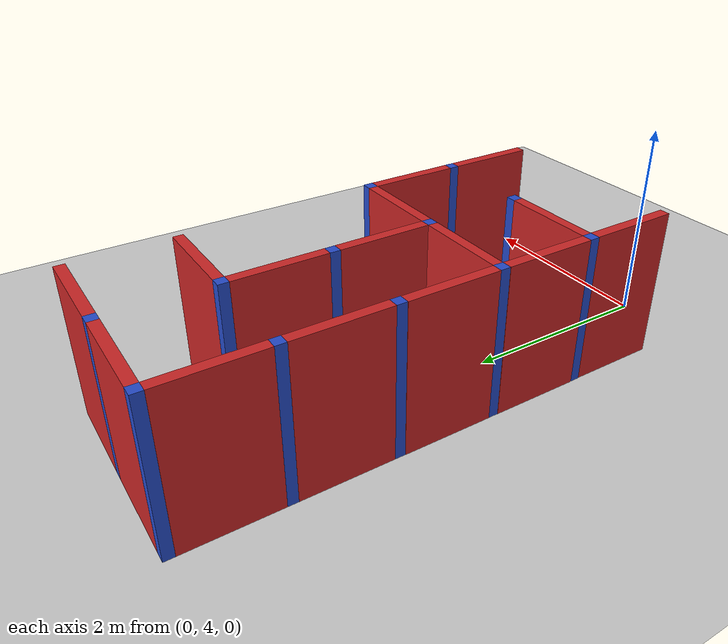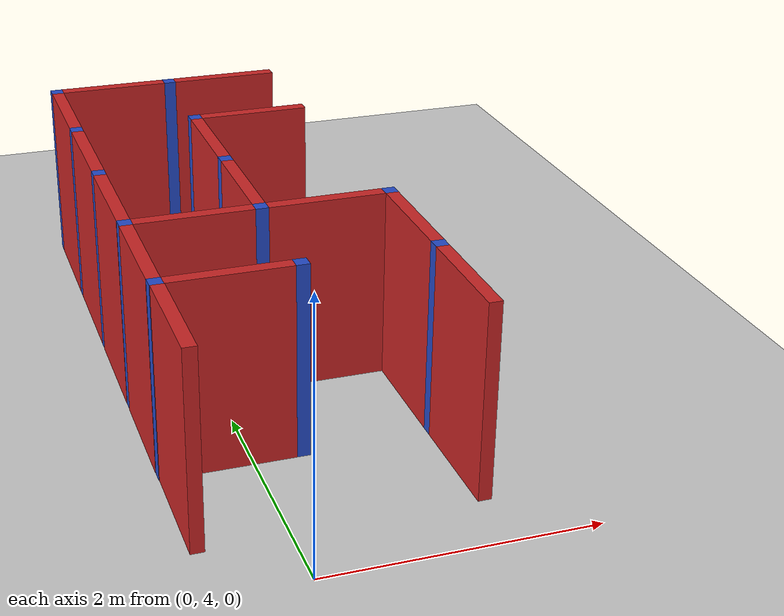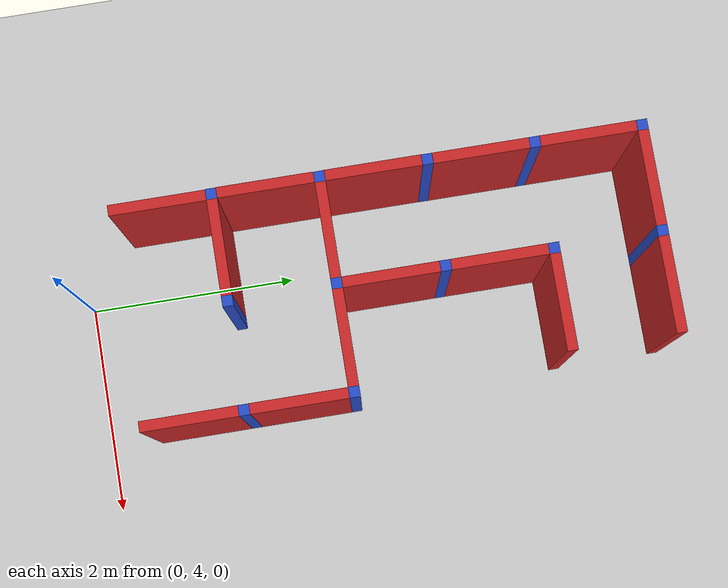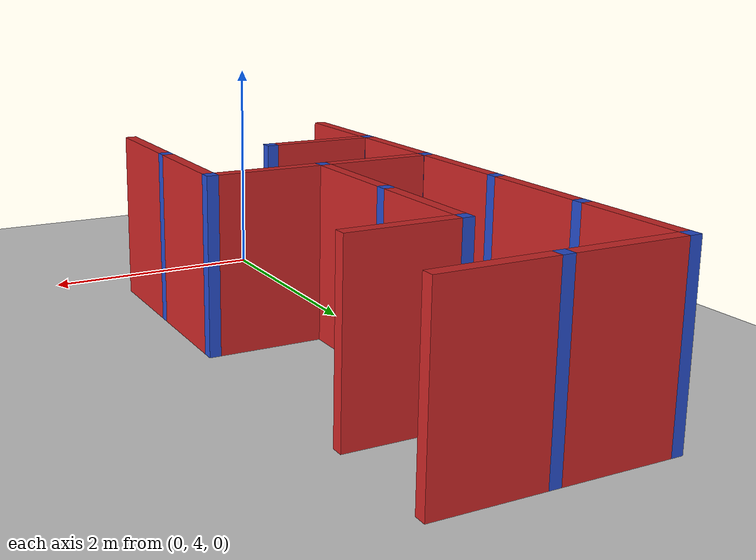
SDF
<sdf version="1.7">
 <world name="default">
  <model name="ground_plane">
   <static>1</static>
   <link name="link">
    <collision name="collision">
     <geometry><plane><normal>0 0 1</normal><size>100 100</size></plane></geometry>
     <surface><friction><ode><mu>100</mu><mu2>50</mu2></ode></friction></surface>
    </collision>
    <visual name="visual">
     <cast_shadows>0</cast_shadows>
     <geometry><plane><normal>0 0 1</normal><size>100 100</size></plane></geometry>
     <material>
      <script><uri>file://media/materials/scripts/gazebo.material</uri><name>Gazebo/Grey</name></script>
     </material>
    </visual>
   </link>
  </model>
  <model name="deneme">
   <link name="Joint_5_-10">
    <pose>5 -10 0 0 -0 0</pose>
    <visual name="Wall_2_Visual">
     <pose>0 0 0.75 0 -0 0</pose>
     <geometry><box><size>0.1 0.1 1.5</size></box></geometry>
     <material>
      <script><uri>file://media/materials/scripts/gazebo.material</uri><name>Gazebo/Blue</name></script>
      <ambient>0.996078 0.47451 0.0196078 1</ambient>
      <shader type="pixel"/>
     </material>
     <meta><layer>0</layer></meta>
    </visual>
    <collision name="Wall_2_Collision">
     <pose>0 0 0.75 0 -0 0</pose>
     <geometry><box><size>0.1 0.1 1.5</size></box></geometry>
     <surface>
      <friction>
       <ode><mu>1</mu><mu2>1</mu2><fdir1>0 0 0</fdir1><slip1>0</slip1><slip2>0</slip2></ode>
       <torsional>
        <coefficient>1</coefficient>
        <patch_radius>0</patch_radius>
        <surface_radius>0</surface_radius>
        <use_patch_radius>1</use_patch_radius>
        <ode><slip>0</slip></ode>
       </torsional>
      </friction>
      <bounce><restitution_coefficient>0</restitution_coefficient><threshold>1e+06</threshold></bounce>
      <contact>
       <collide_without_contact>0</collide_without_contact>
       <collide_without_contact_bitmask>1</collide_without_contact_bitmask>
       <collide_bitmask>1</collide_bitmask>
       <ode>
        <soft_cfm>0</soft_cfm>
        <soft_erp>0.2</soft_erp>
        <kp>1e+13</kp>
        <kd>1</kd>
        <max_vel>0.01</max_vel>
        <min_depth>0</min_depth>
       </ode>
       <bullet>
        <split_impulse>1</split_impulse>
        <split_impulse_penetration_threshold>-0.01</split_impulse_penetration_threshold>
        <soft_cfm>0</soft_cfm>
        <soft_erp>0.2</soft_erp>
        <kp>1e+13</kp>
        <kd>1</kd>
       </bullet>
      </contact>
     </surface>
    </collision>
   </link>
   <link name="Joint_5_-6">
    <pose>5 -6 0 0 -0 0</pose>
    <visual name="Wall_2_Visual">
     <pose>0 0 0.75 0 -0 0</pose>
     <geometry><box><size>0.1 0.1 1.5</size></box></geometry>
     <material>
      <script><uri>file://media/materials/scripts/gazebo.material</uri><name>Gazebo/Blue</name></script>
      <ambient>0.996078 0.47451 0.0196078 1</ambient>
      <shader type="pixel"/>
     </material>
     <meta><layer>0</layer></meta>
    </visual>
    <collision name="Wall_2_Collision">
     <pose>0 0 0.75 0 -0 0</pose>
     <geometry><box><size>0.1 0.1 1.5</size></box></geometry>
     <surface>
      <friction>
       <ode><mu>1</mu><mu2>1</mu2><fdir1>0 0 0</fdir1><slip1>0</slip1><slip2>0</slip2></ode>
       <torsional>
        <coefficient>1</coefficient>
        <patch_radius>0</patch_radius>
        <surface_radius>0</surface_radius>
        <use_patch_radius>1</use_patch_radius>
        <ode><slip>0</slip></ode>
       </torsional>
      </friction>
      <bounce><restitution_coefficient>0</restitution_coefficient><threshold>1e+06</threshold></bounce>
      <contact>
       <collide_without_contact>0</collide_without_contact>
       <collide_without_contact_bitmask>1</collide_without_contact_bitmask>
       <collide_bitmask>1</collide_bitmask>
       <ode>
        <soft_cfm>0</soft_cfm>
        <soft_erp>0.2</soft_erp>
        <kp>1e+13</kp>
        <kd>1</kd>
        <max_vel>0.01</max_vel>
        <min_depth>0</min_depth>
       </ode>
       <bullet>
        <split_impulse>1</split_impulse>
        <split_impulse_penetration_threshold>-0.01</split_impulse_penetration_threshold>
        <soft_cfm>0</soft_cfm>
        <soft_erp>0.2</soft_erp>
        <kp>1e+13</kp>
        <kd>1</kd>
       </bullet>
      </contact>
     </surface>
    </collision>
   </link>
   <link name="Joint_5_-7">
    <pose>5 -7 0 0 -0 0</pose>
    <visual name="Wall_2_Visual">
     <pose>0 0 0.75 0 -0 0</pose>
     <geometry><box><size>0.1 0.1 1.5</size></box></geometry>
     <material>
      <script><uri>file://media/materials/scripts/gazebo.material</uri><name>Gazebo/Blue</name></script>
      <ambient>0.996078 0.47451 0.0196078 1</ambient>
      <shader type="pixel"/>
     </material>
     <meta><layer>0</layer></meta>
    </visual>
    <collision name="Wall_2_Collision">
     <pose>0 0 0.75 0 -0 0</pose>
     <geometry><box><size>0.1 0.1 1.5</size></box></geometry>
     <surface>
      <friction>
       <ode><mu>1</mu><mu2>1</mu2><fdir1>0 0 0</fdir1><slip1>0</slip1><slip2>0</slip2></ode>
       <torsional>
        <coefficient>1</coefficient>
        <patch_radius>0</patch_radius>
        <surface_radius>0</surface_radius>
        <use_patch_radius>1</use_patch_radius>
        <ode><slip>0</slip></ode>
       </torsional>
      </friction>
      <bounce><restitution_coefficient>0</restitution_coefficient><threshold>1e+06</threshold></bounce>
      <contact>
       <collide_without_contact>0</collide_without_contact>
       <collide_without_contact_bitmask>1</collide_without_contact_bitmask>
       <collide_bitmask>1</collide_bitmask>
       <ode>
        <soft_cfm>0</soft_cfm>
        <soft_erp>0.2</soft_erp>
        <kp>1e+13</kp>
        <kd>1</kd>
        <max_vel>0.01</max_vel>
        <min_depth>0</min_depth>
       </ode>
       <bullet>
        <split_impulse>1</split_impulse>
        <split_impulse_penetration_threshold>-0.01</split_impulse_penetration_threshold>
        <soft_cfm>0</soft_cfm>
        <soft_erp>0.2</soft_erp>
        <kp>1e+13</kp>
        <kd>1</kd>
       </bullet>
      </contact>
     </surface>
    </collision>
   </link>
   <link name="Joint_5_-8">
    <pose>5 -8 0 0 -0 0</pose>
    <visual name="Wall_2_Visual">
     <pose>0 0 0.75 0 -0 0</pose>
     <geometry><box><size>0.1 0.1 1.5</size></box></geometry>
     <material>
      <script><uri>file://media/materials/scripts/gazebo.material</uri><name>Gazebo/Blue</name></script>
      <ambient>0.996078 0.47451 0.0196078 1</ambient>
      <shader type="pixel"/>
     </material>
     <meta><layer>0</layer></meta>
    </visual>
    <collision name="Wall_2_Collision">
     <pose>0 0 0.75 0 -0 0</pose>
     <geometry><box><size>0.1 0.1 1.5</size></box></geometry>
     <surface>
      <friction>
       <ode><mu>1</mu><mu2>1</mu2><fdir1>0 0 0</fdir1><slip1>0</slip1><slip2>0</slip2></ode>
       <torsional>
        <coefficient>1</coefficient>
        <patch_radius>0</patch_radius>
        <surface_radius>0</surface_radius>
        <use_patch_radius>1</use_patch_radius>
        <ode><slip>0</slip></ode>
       </torsional>
      </friction>
      <bounce><restitution_coefficient>0</restitution_coefficient><threshold>1e+06</threshold></bounce>
      <contact>
       <collide_without_contact>0</collide_without_contact>
       <collide_without_contact_bitmask>1</collide_without_contact_bitmask>
       <collide_bitmask>1</collide_bitmask>
       <ode>
        <soft_cfm>0</soft_cfm>
        <soft_erp>0.2</soft_erp>
        <kp>1e+13</kp>
        <kd>1</kd>
        <max_vel>0.01</max_vel>
        <min_depth>0</min_depth>
       </ode>
       <bullet>
        <split_impulse>1</split_impulse>
        <split_impulse_penetration_threshold>-0.01</split_impulse_penetration_threshold>
        <soft_cfm>0</soft_cfm>
        <soft_erp>0.2</soft_erp>
        <kp>1e+13</kp>
        <kd>1</kd>
       </bullet>
      </contact>
     </surface>
    </collision>
   </link>
   <link name="Joint_5_-9">
    <pose>5 -9 0 0 -0 0</pose>
    <visual name="Wall_2_Visual">
     <pose>0 0 0.75 0 -0 0</pose>
     <geometry><box><size>0.1 0.1 1.5</size></box></geometry>
     <material>
      <script><uri>file://media/materials/scripts/gazebo.material</uri><name>Gazebo/Blue</name></script>
      <ambient>0.996078 0.47451 0.0196078 1</ambient>
      <shader type="pixel"/>
     </material>
     <meta><layer>0</layer></meta>
    </visual>
    <collision name="Wall_2_Collision">
     <pose>0 0 0.75 0 -0 0</pose>
     <geometry><box><size>0.1 0.1 1.5</size></box></geometry>
     <surface>
      <friction>
       <ode><mu>1</mu><mu2>1</mu2><fdir1>0 0 0</fdir1><slip1>0</slip1><slip2>0</slip2></ode>
       <torsional>
        <coefficient>1</coefficient>
        <patch_radius>0</patch_radius>
        <surface_radius>0</surface_radius>
        <use_patch_radius>1</use_patch_radius>
        <ode><slip>0</slip></ode>
       </torsional>
      </friction>
      <bounce><restitution_coefficient>0</restitution_coefficient><threshold>1e+06</threshold></bounce>
      <contact>
       <collide_without_contact>0</collide_without_contact>
       <collide_without_contact_bitmask>1</collide_without_contact_bitmask>
       <collide_bitmask>1</collide_bitmask>
       <ode>
        <soft_cfm>0</soft_cfm>
        <soft_erp>0.2</soft_erp>
        <kp>1e+13</kp>
        <kd>1</kd>
        <max_vel>0.01</max_vel>
        <min_depth>0</min_depth>
       </ode>
       <bullet>
        <split_impulse>1</split_impulse>
        <split_impulse_penetration_threshold>-0.01</split_impulse_penetration_threshold>
        <soft_cfm>0</soft_cfm>
        <soft_erp>0.2</soft_erp>
        <kp>1e+13</kp>
        <kd>1</kd>
       </bullet>
      </contact>
     </surface>
    </collision>
   </link>
   <link name="Joint_6_-10">
    <pose>6 -10 0 0 -0 0</pose>
    <visual name="Wall_2_Visual">
     <pose>0 0 0.75 0 -0 0</pose>
     <geometry><box><size>0.1 0.1 1.5</size></box></geometry>
     <material>
      <script><uri>file://media/materials/scripts/gazebo.material</uri><name>Gazebo/Blue</name></script>
      <ambient>0.996078 0.47451 0.0196078 1</ambient>
      <shader type="pixel"/>
     </material>
     <meta><layer>0</layer></meta>
    </visual>
    <collision name="Wall_2_Collision">
     <pose>0 0 0.75 0 -0 0</pose>
     <geometry><box><size>0.1 0.1 1.5</size></box></geometry>
     <surface>
      <friction>
       <ode><mu>1</mu><mu2>1</mu2><fdir1>0 0 0</fdir1><slip1>0</slip1><slip2>0</slip2></ode>
       <torsional>
        <coefficient>1</coefficient>
        <patch_radius>0</patch_radius>
        <surface_radius>0</surface_radius>
        <use_patch_radius>1</use_patch_radius>
        <ode><slip>0</slip></ode>
       </torsional>
      </friction>
      <bounce><restitution_coefficient>0</restitution_coefficient><threshold>1e+06</threshold></bounce>
      <contact>
       <collide_without_contact>0</collide_without_contact>
       <collide_without_contact_bitmask>1</collide_without_contact_bitmask>
       <collide_bitmask>1</collide_bitmask>
       <ode>
        <soft_cfm>0</soft_cfm>
        <soft_erp>0.2</soft_erp>
        <kp>1e+13</kp>
        <kd>1</kd>
        <max_vel>0.01</max_vel>
        <min_depth>0</min_depth>
       </ode>
       <bullet>
        <split_impulse>1</split_impulse>
        <split_impulse_penetration_threshold>-0.01</split_impulse_penetration_threshold>
        <soft_cfm>0</soft_cfm>
        <soft_erp>0.2</soft_erp>
        <kp>1e+13</kp>
        <kd>1</kd>
       </bullet>
      </contact>
     </surface>
    </collision>
   </link>
   <link name="Joint_6_-6">
    <pose>6 -6 0 0 -0 0</pose>
    <visual name="Wall_2_Visual">
     <pose>0 0 0.75 0 -0 0</pose>
     <geometry><box><size>0.1 0.1 1.5</size></box></geometry>
     <material>
      <script><uri>file://media/materials/scripts/gazebo.material</uri><name>Gazebo/Blue</name></script>
      <ambient>0.996078 0.47451 0.0196078 1</ambient>
      <shader type="pixel"/>
     </material>
     <meta><layer>0</layer></meta>
    </visual>
    <collision name="Wall_2_Collision">
     <pose>0 0 0.75 0 -0 0</pose>
     <geometry><box><size>0.1 0.1 1.5</size></box></geometry>
     <surface>
      <friction>
       <ode><mu>1</mu><mu2>1</mu2><fdir1>0 0 0</fdir1><slip1>0</slip1><slip2>0</slip2></ode>
       <torsional>
        <coefficient>1</coefficient>
        <patch_radius>0</patch_radius>
        <surface_radius>0</surface_radius>
        <use_patch_radius>1</use_patch_radius>
        <ode><slip>0</slip></ode>
       </torsional>
      </friction>
      <bounce><restitution_coefficient>0</restitution_coefficient><threshold>1e+06</threshold></bounce>
      <contact>
       <collide_without_contact>0</collide_without_contact>
       <collide_without_contact_bitmask>1</collide_without_contact_bitmask>
       <collide_bitmask>1</collide_bitmask>
       <ode>
        <soft_cfm>0</soft_cfm>
        <soft_erp>0.2</soft_erp>
        <kp>1e+13</kp>
        <kd>1</kd>
        <max_vel>0.01</max_vel>
        <min_depth>0</min_depth>
       </ode>
       <bullet>
        <split_impulse>1</split_impulse>
        <split_impulse_penetration_threshold>-0.01</split_impulse_penetration_threshold>
        <soft_cfm>0</soft_cfm>
        <soft_erp>0.2</soft_erp>
        <kp>1e+13</kp>
        <kd>1</kd>
       </bullet>
      </contact>
     </surface>
    </collision>
   </link>
   <link name="Joint_6_-7">
    <pose>6 -7 0 0 -0 0</pose>
    <visual name="Wall_2_Visual">
     <pose>0 0 0.75 0 -0 0</pose>
     <geometry><box><size>0.1 0.1 1.5</size></box></geometry>
     <material>
      <script><uri>file://media/materials/scripts/gazebo.material</uri><name>Gazebo/Blue</name></script>
      <ambient>0.996078 0.47451 0.0196078 1</ambient>
      <shader type="pixel"/>
     </material>
     <meta><layer>0</layer></meta>
    </visual>
    <collision name="Wall_2_Collision">
     <pose>0 0 0.75 0 -0 0</pose>
     <geometry><box><size>0.1 0.1 1.5</size></box></geometry>
     <surface>
      <friction>
       <ode><mu>1</mu><mu2>1</mu2><fdir1>0 0 0</fdir1><slip1>0</slip1><slip2>0</slip2></ode>
       <torsional>
        <coefficient>1</coefficient>
        <patch_radius>0</patch_radius>
        <surface_radius>0</surface_radius>
        <use_patch_radius>1</use_patch_radius>
        <ode><slip>0</slip></ode>
       </torsional>
      </friction>
      <bounce><restitution_coefficient>0</restitution_coefficient><threshold>1e+06</threshold></bounce>
      <contact>
       <collide_without_contact>0</collide_without_contact>
       <collide_without_contact_bitmask>1</collide_without_contact_bitmask>
       <collide_bitmask>1</collide_bitmask>
       <ode>
        <soft_cfm>0</soft_cfm>
        <soft_erp>0.2</soft_erp>
        <kp>1e+13</kp>
        <kd>1</kd>
        <max_vel>0.01</max_vel>
        <min_depth>0</min_depth>
       </ode>
       <bullet>
        <split_impulse>1</split_impulse>
        <split_impulse_penetration_threshold>-0.01</split_impulse_penetration_threshold>
        <soft_cfm>0</soft_cfm>
        <soft_erp>0.2</soft_erp>
        <kp>1e+13</kp>
        <kd>1</kd>
       </bullet>
      </contact>
     </surface>
    </collision>
   </link>
   <link name="Joint_6_-8">
    <pose>6 -8 0 0 -0 0</pose>
    <visual name="Wall_2_Visual">
     <pose>0 0 0.75 0 -0 0</pose>
     <geometry><box><size>0.1 0.1 1.5</size></box></geometry>
     <material>
      <script><uri>file://media/materials/scripts/gazebo.material</uri><name>Gazebo/Blue</name></script>
      <ambient>0.996078 0.47451 0.0196078 1</ambient>
      <shader type="pixel"/>
     </material>
     <meta><layer>0</layer></meta>
    </visual>
    <collision name="Wall_2_Collision">
     <pose>0 0 0.75 0 -0 0</pose>
     <geometry><box><size>0.1 0.1 1.5</size></box></geometry>
     <surface>
      <friction>
       <ode><mu>1</mu><mu2>1</mu2><fdir1>0 0 0</fdir1><slip1>0</slip1><slip2>0</slip2></ode>
       <torsional>
        <coefficient>1</coefficient>
        <patch_radius>0</patch_radius>
        <surface_radius>0</surface_radius>
        <use_patch_radius>1</use_patch_radius>
        <ode><slip>0</slip></ode>
       </torsional>
      </friction>
      <bounce><restitution_coefficient>0</restitution_coefficient><threshold>1e+06</threshold></bounce>
      <contact>
       <collide_without_contact>0</collide_without_contact>
       <collide_without_contact_bitmask>1</collide_without_contact_bitmask>
       <collide_bitmask>1</collide_bitmask>
       <ode>
        <soft_cfm>0</soft_cfm>
        <soft_erp>0.2</soft_erp>
        <kp>1e+13</kp>
        <kd>1</kd>
        <max_vel>0.01</max_vel>
        <min_depth>0</min_depth>
       </ode>
       <bullet>
        <split_impulse>1</split_impulse>
        <split_impulse_penetration_threshold>-0.01</split_impulse_penetration_threshold>
        <soft_cfm>0</soft_cfm>
        <soft_erp>0.2</soft_erp>
        <kp>1e+13</kp>
        <kd>1</kd>
       </bullet>
      </contact>
     </surface>
    </collision>
   </link>
   <link name="Joint_6_-9">
    <pose>6 -9 0 0 -0 0</pose>
    <visual name="Wall_2_Visual">
     <pose>0 0 0.75 0 -0 0</pose>
     <geometry><box><size>0.1 0.1 1.5</size></box></geometry>
     <material>
      <script><uri>file://media/materials/scripts/gazebo.material</uri><name>Gazebo/Blue</name></script>
      <ambient>0.996078 0.47451 0.0196078 1</ambient>
      <shader type="pixel"/>
     </material>
     <meta><layer>0</layer></meta>
    </visual>
    <collision name="Wall_2_Collision">
     <pose>0 0 0.75 0 -0 0</pose>
     <geometry><box><size>0.1 0.1 1.5</size></box></geometry>
     <surface>
      <friction>
       <ode><mu>1</mu><mu2>1</mu2><fdir1>0 0 0</fdir1><slip1>0</slip1><slip2>0</slip2></ode>
       <torsional>
        <coefficient>1</coefficient>
        <patch_radius>0</patch_radius>
        <surface_radius>0</surface_radius>
        <use_patch_radius>1</use_patch_radius>
        <ode><slip>0</slip></ode>
       </torsional>
      </friction>
      <bounce><restitution_coefficient>0</restitution_coefficient><threshold>1e+06</threshold></bounce>
      <contact>
       <collide_without_contact>0</collide_without_contact>
       <collide_without_contact_bitmask>1</collide_without_contact_bitmask>
       <collide_bitmask>1</collide_bitmask>
       <ode>
        <soft_cfm>0</soft_cfm>
        <soft_erp>0.2</soft_erp>
        <kp>1e+13</kp>
        <kd>1</kd>
        <max_vel>0.01</max_vel>
        <min_depth>0</min_depth>
       </ode>
       <bullet>
        <split_impulse>1</split_impulse>
        <split_impulse_penetration_threshold>-0.01</split_impulse_penetration_threshold>
        <soft_cfm>0</soft_cfm>
        <soft_erp>0.2</soft_erp>
        <kp>1e+13</kp>
        <kd>1</kd>
       </bullet>
      </contact>
     </surface>
    </collision>
   </link>
   <link name="Joint_7_-10">
    <pose>7 -10 0 0 -0 0</pose>
    <visual name="Wall_2_Visual">
     <pose>0 0 0.75 0 -0 0</pose>
     <geometry><box><size>0.1 0.1 1.5</size></box></geometry>
     <material>
      <script><uri>file://media/materials/scripts/gazebo.material</uri><name>Gazebo/Blue</name></script>
      <ambient>0.996078 0.47451 0.0196078 1</ambient>
      <shader type="pixel"/>
     </material>
     <meta><layer>0</layer></meta>
    </visual>
    <collision name="Wall_2_Collision">
     <pose>0 0 0.75 0 -0 0</pose>
     <geometry><box><size>0.1 0.1 1.5</size></box></geometry>
     <surface>
      <friction>
       <ode><mu>1</mu><mu2>1</mu2><fdir1>0 0 0</fdir1><slip1>0</slip1><slip2>0</slip2></ode>
       <torsional>
        <coefficient>1</coefficient>
        <patch_radius>0</patch_radius>
        <surface_radius>0</surface_radius>
        <use_patch_radius>1</use_patch_radius>
        <ode><slip>0</slip></ode>
       </torsional>
      </friction>
      <bounce><restitution_coefficient>0</restitution_coefficient><threshold>1e+06</threshold></bounce>
      <contact>
       <collide_without_contact>0</collide_without_contact>
       <collide_without_contact_bitmask>1</collide_without_contact_bitmask>
       <collide_bitmask>1</collide_bitmask>
       <ode>
        <soft_cfm>0</soft_cfm>
        <soft_erp>0.2</soft_erp>
        <kp>1e+13</kp>
        <kd>1</kd>
        <max_vel>0.01</max_vel>
        <min_depth>0</min_depth>
       </ode>
       <bullet>
        <split_impulse>1</split_impulse>
        <split_impulse_penetration_threshold>-0.01</split_impulse_penetration_threshold>
        <soft_cfm>0</soft_cfm>
        <soft_erp>0.2</soft_erp>
        <kp>1e+13</kp>
        <kd>1</kd>
       </bullet>
      </contact>
     </surface>
    </collision>
   </link>
   <link name="Joint_7_-9">
    <pose>7 -9 0 0 -0 0</pose>
    <visual name="Wall_2_Visual">
     <pose>0 0 0.75 0 -0 0</pose>
     <geometry><box><size>0.1 0.1 1.5</size></box></geometry>
     <material>
      <script><uri>file://media/materials/scripts/gazebo.material</uri><name>Gazebo/Blue</name></script>
      <ambient>0.996078 0.47451 0.0196078 1</ambient>
      <shader type="pixel"/>
     </material>
     <meta><layer>0</layer></meta>
    </visual>
    <collision name="Wall_2_Collision">
     <pose>0 0 0.75 0 -0 0</pose>
     <geometry><box><size>0.1 0.1 1.5</size></box></geometry>
     <surface>
      <friction>
       <ode><mu>1</mu><mu2>1</mu2><fdir1>0 0 0</fdir1><slip1>0</slip1><slip2>0</slip2></ode>
       <torsional>
        <coefficient>1</coefficient>
        <patch_radius>0</patch_radius>
        <surface_radius>0</surface_radius>
        <use_patch_radius>1</use_patch_radius>
        <ode><slip>0</slip></ode>
       </torsional>
      </friction>
      <bounce><restitution_coefficient>0</restitution_coefficient><threshold>1e+06</threshold></bounce>
      <contact>
       <collide_without_contact>0</collide_without_contact>
       <collide_without_contact_bitmask>1</collide_without_contact_bitmask>
       <collide_bitmask>1</collide_bitmask>
       <ode>
        <soft_cfm>0</soft_cfm>
        <soft_erp>0.2</soft_erp>
        <kp>1e+13</kp>
        <kd>1</kd>
        <max_vel>0.01</max_vel>
        <min_depth>0</min_depth>
       </ode>
       <bullet>
        <split_impulse>1</split_impulse>
        <split_impulse_penetration_threshold>-0.01</split_impulse_penetration_threshold>
        <soft_cfm>0</soft_cfm>
        <soft_erp>0.2</soft_erp>
        <kp>1e+13</kp>
        <kd>1</kd>
       </bullet>
      </contact>
     </surface>
    </collision>
   </link>
   <link name="Wall_2_9_v">
    <pose>4.99782 -9.49999 0 0 -0 1.5708</pose>
    <visual name="Wall_0_Visual">
     <pose>0 0 0.75 0 -0 0</pose>
     <geometry><box><size>0.9 0.1 1.5</size></box></geometry>
     <material>
      <script><uri>file://media/materials/scripts/gazebo.material</uri><name>Gazebo/Red</name></script>
      <ambient>0.921569 0.807843 0.615686 1</ambient>
      <shader type="pixel"/>
     </material>
     <meta><layer>0</layer></meta>
    </visual>
    <collision name="Wall_0_Collision">
     <pose>0 0 0.75 0 -0 0</pose>
     <geometry><box><size>0.9 0.1 1.5</size></box></geometry>
     <surface>
      <friction>
       <ode><mu>1</mu><mu2>1</mu2><fdir1>0 0 0</fdir1><slip1>0</slip1><slip2>0</slip2></ode>
       <torsional>
        <coefficient>1</coefficient>
        <patch_radius>0</patch_radius>
        <surface_radius>0</surface_radius>
        <use_patch_radius>1</use_patch_radius>
        <ode><slip>0</slip></ode>
       </torsional>
      </friction>
      <bounce><restitution_coefficient>0</restitution_coefficient><threshold>1e+06</threshold></bounce>
      <contact>
       <collide_without_contact>0</collide_without_contact>
       <collide_without_contact_bitmask>1</collide_without_contact_bitmask>
       <collide_bitmask>1</collide_bitmask>
       <ode>
        <soft_cfm>0</soft_cfm>
        <soft_erp>0.2</soft_erp>
        <kp>1e+13</kp>
        <kd>1</kd>
        <max_vel>0.01</max_vel>
        <min_depth>0</min_depth>
       </ode>
       <bullet>
        <split_impulse>1</split_impulse>
        <split_impulse_penetration_threshold>-0.01</split_impulse_penetration_threshold>
        <soft_cfm>0</soft_cfm>
        <soft_erp>0.2</soft_erp>
        <kp>1e+13</kp>
        <kd>1</kd>
       </bullet>
      </contact>
     </surface>
    </collision>
   </link>
   <link name="Wall_3_8_v">
    <pose>4.99818 -8.49999 0 0 -0 1.5708</pose>
    <visual name="Wall_0_Visual">
     <pose>0 0 0.75 0 -0 0</pose>
     <geometry><box><size>0.9 0.1 1.5</size></box></geometry>
     <material>
      <script><uri>file://media/materials/scripts/gazebo.material</uri><name>Gazebo/Red</name></script>
      <ambient>0.921569 0.807843 0.615686 1</ambient>
      <shader type="pixel"/>
     </material>
     <meta><layer>0</layer></meta>
    </visual>
    <collision name="Wall_0_Collision">
     <pose>0 0 0.75 0 -0 0</pose>
     <geometry><box><size>0.9 0.1 1.5</size></box></geometry>
     <surface>
      <friction>
       <ode><mu>1</mu><mu2>1</mu2><fdir1>0 0 0</fdir1><slip1>0</slip1><slip2>0</slip2></ode>
       <torsional>
        <coefficient>1</coefficient>
        <patch_radius>0</patch_radius>
        <surface_radius>0</surface_radius>
        <use_patch_radius>1</use_patch_radius>
        <ode><slip>0</slip></ode>
       </torsional>
      </friction>
      <bounce><restitution_coefficient>0</restitution_coefficient><threshold>1e+06</threshold></bounce>
      <contact>
       <collide_without_contact>0</collide_without_contact>
       <collide_without_contact_bitmask>1</collide_without_contact_bitmask>
       <collide_bitmask>1</collide_bitmask>
       <ode>
        <soft_cfm>0</soft_cfm>
        <soft_erp>0.2</soft_erp>
        <kp>1e+13</kp>
        <kd>1</kd>
        <max_vel>0.01</max_vel>
        <min_depth>0</min_depth>
       </ode>
       <bullet>
        <split_impulse>1</split_impulse>
        <split_impulse_penetration_threshold>-0.01</split_impulse_penetration_threshold>
        <soft_cfm>0</soft_cfm>
        <soft_erp>0.2</soft_erp>
        <kp>1e+13</kp>
        <kd>1</kd>
       </bullet>
      </contact>
     </surface>
    </collision>
   </link>
   <link name="Wall_4_10_v">
    <pose>5.00378 -10.5 0 0 -0 1.5708</pose>
    <visual name="Wall_0_Visual">
     <pose>0 0 0.75 0 -0 0</pose>
     <geometry><box><size>0.9 0.1 1.5</size></box></geometry>
     <material>
      <script><uri>file://media/materials/scripts/gazebo.material</uri><name>Gazebo/Red</name></script>
      <ambient>0.921569 0.807843 0.615686 1</ambient>
      <shader type="pixel"/>
     </material>
     <meta><layer>0</layer></meta>
    </visual>
    <collision name="Wall_0_Collision">
     <pose>0 0 0.75 0 -0 0</pose>
     <geometry><box><size>0.9 0.1 1.5</size></box></geometry>
     <surface>
      <friction>
       <ode><mu>1</mu><mu2>1</mu2><fdir1>0 0 0</fdir1><slip1>0</slip1><slip2>0</slip2></ode>
       <torsional>
        <coefficient>1</coefficient>
        <patch_radius>0</patch_radius>
        <surface_radius>0</surface_radius>
        <use_patch_radius>1</use_patch_radius>
        <ode><slip>0</slip></ode>
       </torsional>
      </friction>
      <bounce><restitution_coefficient>0</restitution_coefficient><threshold>1e+06</threshold></bounce>
      <contact>
       <collide_without_contact>0</collide_without_contact>
       <collide_without_contact_bitmask>1</collide_without_contact_bitmask>
       <collide_bitmask>1</collide_bitmask>
       <ode>
        <soft_cfm>0</soft_cfm>
        <soft_erp>0.2</soft_erp>
        <kp>1e+13</kp>
        <kd>1</kd>
        <max_vel>0.01</max_vel>
        <min_depth>0</min_depth>
       </ode>
       <bullet>
        <split_impulse>1</split_impulse>
        <split_impulse_penetration_threshold>-0.01</split_impulse_penetration_threshold>
        <soft_cfm>0</soft_cfm>
        <soft_erp>0.2</soft_erp>
        <kp>1e+13</kp>
        <kd>1</kd>
       </bullet>
      </contact>
     </surface>
    </collision>
   </link>
   <link name="Wall_5_10_h">
    <pose>5.5 -10 0 0 -0 0</pose>
    <visual name="Wall_0_Visual">
     <pose>0 0 0.75 0 -0 0</pose>
     <geometry><box><size>0.9 0.1 1.5</size></box></geometry>
     <material>
      <script><uri>file://media/materials/scripts/gazebo.material</uri><name>Gazebo/Red</name></script>
      <ambient>0.921569 0.807843 0.615686 1</ambient>
      <shader type="pixel"/>
     </material>
     <meta><layer>0</layer></meta>
    </visual>
    <collision name="Wall_0_Collision">
     <pose>0 0 0.75 0 -0 0</pose>
     <geometry><box><size>0.9 0.1 1.5</size></box></geometry>
     <surface>
      <friction>
       <ode><mu>1</mu><mu2>1</mu2><fdir1>0 0 0</fdir1><slip1>0</slip1><slip2>0</slip2></ode>
       <torsional>
        <coefficient>1</coefficient>
        <patch_radius>0</patch_radius>
        <surface_radius>0</surface_radius>
        <use_patch_radius>1</use_patch_radius>
        <ode><slip>0</slip></ode>
       </torsional>
      </friction>
      <bounce><restitution_coefficient>0</restitution_coefficient><threshold>1e+06</threshold></bounce>
      <contact>
       <collide_without_contact>0</collide_without_contact>
       <collide_without_contact_bitmask>1</collide_without_contact_bitmask>
       <collide_bitmask>1</collide_bitmask>
       <ode>
        <soft_cfm>0</soft_cfm>
        <soft_erp>0.2</soft_erp>
        <kp>1e+13</kp>
        <kd>1</kd>
        <max_vel>0.01</max_vel>
        <min_depth>0</min_depth>
       </ode>
       <bullet>
        <split_impulse>1</split_impulse>
        <split_impulse_penetration_threshold>-0.01</split_impulse_penetration_threshold>
        <soft_cfm>0</soft_cfm>
        <soft_erp>0.2</soft_erp>
        <kp>1e+13</kp>
        <kd>1</kd>
       </bullet>
      </contact>
     </surface>
    </collision>
   </link>
   <link name="Wall_5_6_h">
    <pose>5.5 -6 0 0 -0 0</pose>
    <visual name="Wall_0_Visual">
     <pose>0 0 0.75 0 -0 0</pose>
     <geometry><box><size>0.9 0.1 1.5</size></box></geometry>
     <material>
      <script><uri>file://media/materials/scripts/gazebo.material</uri><name>Gazebo/Red</name></script>
      <ambient>0.921569 0.807843 0.615686 1</ambient>
      <shader type="pixel"/>
     </material>
     <meta><layer>0</layer></meta>
    </visual>
    <collision name="Wall_0_Collision">
     <pose>0 0 0.75 0 -0 0</pose>
     <geometry><box><size>0.9 0.1 1.5</size></box></geometry>
     <surface>
      <friction>
       <ode><mu>1</mu><mu2>1</mu2><fdir1>0 0 0</fdir1><slip1>0</slip1><slip2>0</slip2></ode>
       <torsional>
        <coefficient>1</coefficient>
        <patch_radius>0</patch_radius>
        <surface_radius>0</surface_radius>
        <use_patch_radius>1</use_patch_radius>
        <ode><slip>0</slip></ode>
       </torsional>
      </friction>
      <bounce><restitution_coefficient>0</restitution_coefficient><threshold>1e+06</threshold></bounce>
      <contact>
       <collide_without_contact>0</collide_without_contact>
       <collide_without_contact_bitmask>1</collide_without_contact_bitmask>
       <collide_bitmask>1</collide_bitmask>
       <ode>
        <soft_cfm>0</soft_cfm>
        <soft_erp>0.2</soft_erp>
        <kp>1e+13</kp>
        <kd>1</kd>
        <max_vel>0.01</max_vel>
        <min_depth>0</min_depth>
       </ode>
       <bullet>
        <split_impulse>1</split_impulse>
        <split_impulse_penetration_threshold>-0.01</split_impulse_penetration_threshold>
        <soft_cfm>0</soft_cfm>
        <soft_erp>0.2</soft_erp>
        <kp>1e+13</kp>
        <kd>1</kd>
       </bullet>
      </contact>
     </surface>
    </collision>
   </link>
   <link name="Wall_5_6_v">
    <pose>5 -6.5 0 0 -0 1.5708</pose>
    <visual name="Wall_0_Visual">
     <pose>0 0 0.75 0 -0 0</pose>
     <geometry><box><size>0.9 0.1 1.5</size></box></geometry>
     <material>
      <script><uri>file://media/materials/scripts/gazebo.material</uri><name>Gazebo/Red</name></script>
      <ambient>0.921569 0.807843 0.615686 1</ambient>
      <shader type="pixel"/>
     </material>
     <meta><layer>0</layer></meta>
    </visual>
    <collision name="Wall_0_Collision">
     <pose>0 0 0.75 0 -0 0</pose>
     <geometry><box><size>0.9 0.1 1.5</size></box></geometry>
     <surface>
      <friction>
       <ode><mu>1</mu><mu2>1</mu2><fdir1>0 0 0</fdir1><slip1>0</slip1><slip2>0</slip2></ode>
       <torsional>
        <coefficient>1</coefficient>
        <patch_radius>0</patch_radius>
        <surface_radius>0</surface_radius>
        <use_patch_radius>1</use_patch_radius>
        <ode><slip>0</slip></ode>
       </torsional>
      </friction>
      <bounce><restitution_coefficient>0</restitution_coefficient><threshold>1e+06</threshold></bounce>
      <contact>
       <collide_without_contact>0</collide_without_contact>
       <collide_without_contact_bitmask>1</collide_without_contact_bitmask>
       <collide_bitmask>1</collide_bitmask>
       <ode>
        <soft_cfm>0</soft_cfm>
        <soft_erp>0.2</soft_erp>
        <kp>1e+13</kp>
        <kd>1</kd>
        <max_vel>0.01</max_vel>
        <min_depth>0</min_depth>
       </ode>
       <bullet>
        <split_impulse>1</split_impulse>
        <split_impulse_penetration_threshold>-0.01</split_impulse_penetration_threshold>
        <soft_cfm>0</soft_cfm>
        <soft_erp>0.2</soft_erp>
        <kp>1e+13</kp>
        <kd>1</kd>
       </bullet>
      </contact>
     </surface>
    </collision>
   </link>
   <link name="Wall_5_7_v">
    <pose>5 -7.5 0 0 -0 1.5708</pose>
    <visual name="Wall_0_Visual">
     <pose>0 0 0.75 0 -0 0</pose>
     <geometry><box><size>0.9 0.1 1.5</size></box></geometry>
     <material>
      <script><uri>file://media/materials/scripts/gazebo.material</uri><name>Gazebo/Red</name></script>
      <ambient>0.921569 0.807843 0.615686 1</ambient>
      <shader type="pixel"/>
     </material>
     <meta><layer>0</layer></meta>
    </visual>
    <collision name="Wall_0_Collision">
     <pose>0 0 0.75 0 -0 0</pose>
     <geometry><box><size>0.9 0.1 1.5</size></box></geometry>
     <surface>
      <friction>
       <ode><mu>1</mu><mu2>1</mu2><fdir1>0 0 0</fdir1><slip1>0</slip1><slip2>0</slip2></ode>
       <torsional>
        <coefficient>1</coefficient>
        <patch_radius>0</patch_radius>
        <surface_radius>0</surface_radius>
        <use_patch_radius>1</use_patch_radius>
        <ode><slip>0</slip></ode>
       </torsional>
      </friction>
      <bounce><restitution_coefficient>0</restitution_coefficient><threshold>1e+06</threshold></bounce>
      <contact>
       <collide_without_contact>0</collide_without_contact>
       <collide_without_contact_bitmask>1</collide_without_contact_bitmask>
       <collide_bitmask>1</collide_bitmask>
       <ode>
        <soft_cfm>0</soft_cfm>
        <soft_erp>0.2</soft_erp>
        <kp>1e+13</kp>
        <kd>1</kd>
        <max_vel>0.01</max_vel>
        <min_depth>0</min_depth>
       </ode>
       <bullet>
        <split_impulse>1</split_impulse>
        <split_impulse_penetration_threshold>-0.01</split_impulse_penetration_threshold>
        <soft_cfm>0</soft_cfm>
        <soft_erp>0.2</soft_erp>
        <kp>1e+13</kp>
        <kd>1</kd>
       </bullet>
      </contact>
     </surface>
    </collision>
   </link>
   <link name="Wall_5_9_h">
    <pose>5.5 -9 0 0 -0 0</pose>
    <visual name="Wall_0_Visual">
     <pose>0 0 0.75 0 -0 0</pose>
     <geometry><box><size>0.9 0.1 1.5</size></box></geometry>
     <material>
      <script><uri>file://media/materials/scripts/gazebo.material</uri><name>Gazebo/Red</name></script>
      <ambient>0.921569 0.807843 0.615686 1</ambient>
      <shader type="pixel"/>
     </material>
     <meta><layer>0</layer></meta>
    </visual>
    <collision name="Wall_0_Collision">
     <pose>0 0 0.75 0 -0 0</pose>
     <geometry><box><size>0.9 0.1 1.5</size></box></geometry>
     <surface>
      <friction>
       <ode><mu>1</mu><mu2>1</mu2><fdir1>0 0 0</fdir1><slip1>0</slip1><slip2>0</slip2></ode>
       <torsional>
        <coefficient>1</coefficient>
        <patch_radius>0</patch_radius>
        <surface_radius>0</surface_radius>
        <use_patch_radius>1</use_patch_radius>
        <ode><slip>0</slip></ode>
       </torsional>
      </friction>
      <bounce><restitution_coefficient>0</restitution_coefficient><threshold>1e+06</threshold></bounce>
      <contact>
       <collide_without_contact>0</collide_without_contact>
       <collide_without_contact_bitmask>1</collide_without_contact_bitmask>
       <collide_bitmask>1</collide_bitmask>
       <ode>
        <soft_cfm>0</soft_cfm>
        <soft_erp>0.2</soft_erp>
        <kp>1e+13</kp>
        <kd>1</kd>
        <max_vel>0.01</max_vel>
        <min_depth>0</min_depth>
       </ode>
       <bullet>
        <split_impulse>1</split_impulse>
        <split_impulse_penetration_threshold>-0.01</split_impulse_penetration_threshold>
        <soft_cfm>0</soft_cfm>
        <soft_erp>0.2</soft_erp>
        <kp>1e+13</kp>
        <kd>1</kd>
       </bullet>
      </contact>
     </surface>
    </collision>
   </link>
   <link name="Wall_6_6_h">
    <pose>6.5 -6 0 0 -0 0</pose>
    <visual name="Wall_0_Visual">
     <pose>0 0 0.75 0 -0 0</pose>
     <geometry><box><size>0.9 0.1 1.5</size></box></geometry>
     <material>
      <script><uri>file://media/materials/scripts/gazebo.material</uri><name>Gazebo/Red</name></script>
      <ambient>0.921569 0.807843 0.615686 1</ambient>
      <shader type="pixel"/>
     </material>
     <meta><layer>0</layer></meta>
    </visual>
    <collision name="Wall_0_Collision">
     <pose>0 0 0.75 0 -0 0</pose>
     <geometry><box><size>0.9 0.1 1.5</size></box></geometry>
     <surface>
      <friction>
       <ode><mu>1</mu><mu2>1</mu2><fdir1>0 0 0</fdir1><slip1>0</slip1><slip2>0</slip2></ode>
       <torsional>
        <coefficient>1</coefficient>
        <patch_radius>0</patch_radius>
        <surface_radius>0</surface_radius>
        <use_patch_radius>1</use_patch_radius>
        <ode><slip>0</slip></ode>
       </torsional>
      </friction>
      <bounce><restitution_coefficient>0</restitution_coefficient><threshold>1e+06</threshold></bounce>
      <contact>
       <collide_without_contact>0</collide_without_contact>
       <collide_without_contact_bitmask>1</collide_without_contact_bitmask>
       <collide_bitmask>1</collide_bitmask>
       <ode>
        <soft_cfm>0</soft_cfm>
        <soft_erp>0.2</soft_erp>
        <kp>1e+13</kp>
        <kd>1</kd>
        <max_vel>0.01</max_vel>
        <min_depth>0</min_depth>
       </ode>
       <bullet>
        <split_impulse>1</split_impulse>
        <split_impulse_penetration_threshold>-0.01</split_impulse_penetration_threshold>
        <soft_cfm>0</soft_cfm>
        <soft_erp>0.2</soft_erp>
        <kp>1e+13</kp>
        <kd>1</kd>
       </bullet>
      </contact>
     </surface>
    </collision>
   </link>
   <link name="Wall_6_7_h">
    <pose>6.5 -7 0 0 -0 0</pose>
    <visual name="Wall_0_Visual">
     <pose>0 0 0.75 0 -0 0</pose>
     <geometry><box><size>0.9 0.1 1.5</size></box></geometry>
     <material>
      <script><uri>file://media/materials/scripts/gazebo.material</uri><name>Gazebo/Red</name></script>
      <ambient>0.921569 0.807843 0.615686 1</ambient>
      <shader type="pixel"/>
     </material>
     <meta><layer>0</layer></meta>
    </visual>
    <collision name="Wall_0_Collision">
     <pose>0 0 0.75 0 -0 0</pose>
     <geometry><box><size>0.9 0.1 1.5</size></box></geometry>
     <surface>
      <friction>
       <ode><mu>1</mu><mu2>1</mu2><fdir1>0 0 0</fdir1><slip1>0</slip1><slip2>0</slip2></ode>
       <torsional>
        <coefficient>1</coefficient>
        <patch_radius>0</patch_radius>
        <surface_radius>0</surface_radius>
        <use_patch_radius>1</use_patch_radius>
        <ode><slip>0</slip></ode>
       </torsional>
      </friction>
      <bounce><restitution_coefficient>0</restitution_coefficient><threshold>1e+06</threshold></bounce>
      <contact>
       <collide_without_contact>0</collide_without_contact>
       <collide_without_contact_bitmask>1</collide_without_contact_bitmask>
       <collide_bitmask>1</collide_bitmask>
       <ode>
        <soft_cfm>0</soft_cfm>
        <soft_erp>0.2</soft_erp>
        <kp>1e+13</kp>
        <kd>1</kd>
        <max_vel>0.01</max_vel>
        <min_depth>0</min_depth>
       </ode>
       <bullet>
        <split_impulse>1</split_impulse>
        <split_impulse_penetration_threshold>-0.01</split_impulse_penetration_threshold>
        <soft_cfm>0</soft_cfm>
        <soft_erp>0.2</soft_erp>
        <kp>1e+13</kp>
        <kd>1</kd>
       </bullet>
      </contact>
     </surface>
    </collision>
   </link>
   <link name="Wall_6_7_v">
    <pose>6 -7.5 0 0 -0 1.5708</pose>
    <visual name="Wall_0_Visual">
     <pose>0 0 0.75 0 -0 0</pose>
     <geometry><box><size>0.9 0.1 1.5</size></box></geometry>
     <material>
      <script><uri>file://media/materials/scripts/gazebo.material</uri><name>Gazebo/Red</name></script>
      <ambient>0.921569 0.807843 0.615686 1</ambient>
      <shader type="pixel"/>
     </material>
     <meta><layer>0</layer></meta>
    </visual>
    <collision name="Wall_0_Collision">
     <pose>0 0 0.75 0 -0 0</pose>
     <geometry><box><size>0.9 0.1 1.5</size></box></geometry>
     <surface>
      <friction>
       <ode><mu>1</mu><mu2>1</mu2><fdir1>0 0 0</fdir1><slip1>0</slip1><slip2>0</slip2></ode>
       <torsional>
        <coefficient>1</coefficient>
        <patch_radius>0</patch_radius>
        <surface_radius>0</surface_radius>
        <use_patch_radius>1</use_patch_radius>
        <ode><slip>0</slip></ode>
       </torsional>
      </friction>
      <bounce><restitution_coefficient>0</restitution_coefficient><threshold>1e+06</threshold></bounce>
      <contact>
       <collide_without_contact>0</collide_without_contact>
       <collide_without_contact_bitmask>1</collide_without_contact_bitmask>
       <collide_bitmask>1</collide_bitmask>
       <ode>
        <soft_cfm>0</soft_cfm>
        <soft_erp>0.2</soft_erp>
        <kp>1e+13</kp>
        <kd>1</kd>
        <max_vel>0.01</max_vel>
        <min_depth>0</min_depth>
       </ode>
       <bullet>
        <split_impulse>1</split_impulse>
        <split_impulse_penetration_threshold>-0.01</split_impulse_penetration_threshold>
        <soft_cfm>0</soft_cfm>
        <soft_erp>0.2</soft_erp>
        <kp>1e+13</kp>
        <kd>1</kd>
       </bullet>
      </contact>
     </surface>
    </collision>
   </link>
   <link name="Wall_6_8_v">
    <pose>6 -8.5 0 0 -0 1.5708</pose>
    <visual name="Wall_0_Visual">
     <pose>0 0 0.75 0 -0 0</pose>
     <geometry><box><size>0.9 0.1 1.5</size></box></geometry>
     <material>
      <script><uri>file://media/materials/scripts/gazebo.material</uri><name>Gazebo/Red</name></script>
      <ambient>0.921569 0.807843 0.615686 1</ambient>
      <shader type="pixel"/>
     </material>
     <meta><layer>0</layer></meta>
    </visual>
    <collision name="Wall_0_Collision">
     <pose>0 0 0.75 0 -0 0</pose>
     <geometry><box><size>0.9 0.1 1.5</size></box></geometry>
     <surface>
      <friction>
       <ode><mu>1</mu><mu2>1</mu2><fdir1>0 0 0</fdir1><slip1>0</slip1><slip2>0</slip2></ode>
       <torsional>
        <coefficient>1</coefficient>
        <patch_radius>0</patch_radius>
        <surface_radius>0</surface_radius>
        <use_patch_radius>1</use_patch_radius>
        <ode><slip>0</slip></ode>
       </torsional>
      </friction>
      <bounce><restitution_coefficient>0</restitution_coefficient><threshold>1e+06</threshold></bounce>
      <contact>
       <collide_without_contact>0</collide_without_contact>
       <collide_without_contact_bitmask>1</collide_without_contact_bitmask>
       <collide_bitmask>1</collide_bitmask>
       <ode>
        <soft_cfm>0</soft_cfm>
        <soft_erp>0.2</soft_erp>
        <kp>1e+13</kp>
        <kd>1</kd>
        <max_vel>0.01</max_vel>
        <min_depth>0</min_depth>
       </ode>
       <bullet>
        <split_impulse>1</split_impulse>
        <split_impulse_penetration_threshold>-0.01</split_impulse_penetration_threshold>
        <soft_cfm>0</soft_cfm>
        <soft_erp>0.2</soft_erp>
        <kp>1e+13</kp>
        <kd>1</kd>
       </bullet>
      </contact>
     </surface>
    </collision>
   </link>
   <link name="Wall_6_9_h">
    <pose>6.5 -9 0 0 -0 0</pose>
    <visual name="Wall_0_Visual">
     <pose>0 0 0.75 0 -0 0</pose>
     <geometry><box><size>0.9 0.1 1.5</size></box></geometry>
     <material>
      <script><uri>file://media/materials/scripts/gazebo.material</uri><name>Gazebo/Red</name></script>
      <ambient>0.921569 0.807843 0.615686 1</ambient>
      <shader type="pixel"/>
     </material>
     <meta><layer>0</layer></meta>
    </visual>
    <collision name="Wall_0_Collision">
     <pose>0 0 0.75 0 -0 0</pose>
     <geometry><box><size>0.9 0.1 1.5</size></box></geometry>
     <surface>
      <friction>
       <ode><mu>1</mu><mu2>1</mu2><fdir1>0 0 0</fdir1><slip1>0</slip1><slip2>0</slip2></ode>
       <torsional>
        <coefficient>1</coefficient>
        <patch_radius>0</patch_radius>
        <surface_radius>0</surface_radius>
        <use_patch_radius>1</use_patch_radius>
        <ode><slip>0</slip></ode>
       </torsional>
      </friction>
      <bounce><restitution_coefficient>0</restitution_coefficient><threshold>1e+06</threshold></bounce>
      <contact>
       <collide_without_contact>0</collide_without_contact>
       <collide_without_contact_bitmask>1</collide_without_contact_bitmask>
       <collide_bitmask>1</collide_bitmask>
       <ode>
        <soft_cfm>0</soft_cfm>
        <soft_erp>0.2</soft_erp>
        <kp>1e+13</kp>
        <kd>1</kd>
        <max_vel>0.01</max_vel>
        <min_depth>0</min_depth>
       </ode>
       <bullet>
        <split_impulse>1</split_impulse>
        <split_impulse_penetration_threshold>-0.01</split_impulse_penetration_threshold>
        <soft_cfm>0</soft_cfm>
        <soft_erp>0.2</soft_erp>
        <kp>1e+13</kp>
        <kd>1</kd>
       </bullet>
      </contact>
     </surface>
    </collision>
   </link>
   <link name="Wall_7_10_v">
    <pose>7 -10.5 0 0 -0 1.5708</pose>
    <visual name="Wall_0_Visual">
     <pose>0 0 0.75 0 -0 0</pose>
     <geometry><box><size>0.9 0.1 1.5</size></box></geometry>
     <material>
      <script><uri>file://media/materials/scripts/gazebo.material</uri><name>Gazebo/Red</name></script>
      <ambient>0.921569 0.807843 0.615686 1</ambient>
      <shader type="pixel"/>
     </material>
     <meta><layer>0</layer></meta>
    </visual>
    <collision name="Wall_0_Collision">
     <pose>0 0 0.75 0 -0 0</pose>
     <geometry><box><size>0.9 0.1 1.5</size></box></geometry>
     <surface>
      <friction>
       <ode><mu>1</mu><mu2>1</mu2><fdir1>0 0 0</fdir1><slip1>0</slip1><slip2>0</slip2></ode>
       <torsional>
        <coefficient>1</coefficient>
        <patch_radius>0</patch_radius>
        <surface_radius>0</surface_radius>
        <use_patch_radius>1</use_patch_radius>
        <ode><slip>0</slip></ode>
       </torsional>
      </friction>
      <bounce><restitution_coefficient>0</restitution_coefficient><threshold>1e+06</threshold></bounce>
      <contact>
       <collide_without_contact>0</collide_without_contact>
       <collide_without_contact_bitmask>1</collide_without_contact_bitmask>
       <collide_bitmask>1</collide_bitmask>
       <ode>
        <soft_cfm>0</soft_cfm>
        <soft_erp>0.2</soft_erp>
        <kp>1e+13</kp>
        <kd>1</kd>
        <max_vel>0.01</max_vel>
        <min_depth>0</min_depth>
       </ode>
       <bullet>
        <split_impulse>1</split_impulse>
        <split_impulse_penetration_threshold>-0.01</split_impulse_penetration_threshold>
        <soft_cfm>0</soft_cfm>
        <soft_erp>0.2</soft_erp>
        <kp>1e+13</kp>
        <kd>1</kd>
       </bullet>
      </contact>
     </surface>
    </collision>
   </link>
   <link name="Wall_7_9_v">
    <pose>7 -9.5 0 0 -0 1.5708</pose>
    <visual name="Wall_0_Visual">
     <pose>0 0 0.75 0 -0 0</pose>
     <geometry><box><size>0.9 0.1 1.5</size></box></geometry>
     <material>
      <script><uri>file://media/materials/scripts/gazebo.material</uri><name>Gazebo/Red</name></script>
      <ambient>0.921569 0.807843 0.615686 1</ambient>
      <shader type="pixel"/>
     </material>
     <meta><layer>0</layer></meta>
    </visual>
    <collision name="Wall_0_Collision">
     <pose>0 0 0.75 0 -0 0</pose>
     <geometry><box><size>0.9 0.1 1.5</size></box></geometry>
     <surface>
      <friction>
       <ode><mu>1</mu><mu2>1</mu2><fdir1>0 0 0</fdir1><slip1>0</slip1><slip2>0</slip2></ode>
       <torsional>
        <coefficient>1</coefficient>
        <patch_radius>0</patch_radius>
        <surface_radius>0</surface_radius>
        <use_patch_radius>1</use_patch_radius>
        <ode><slip>0</slip></ode>
       </torsional>
      </friction>
      <bounce><restitution_coefficient>0</restitution_coefficient><threshold>1e+06</threshold></bounce>
      <contact>
       <collide_without_contact>0</collide_without_contact>
       <collide_without_contact_bitmask>1</collide_without_contact_bitmask>
       <collide_bitmask>1</collide_bitmask>
       <ode>
        <soft_cfm>0</soft_cfm>
        <soft_erp>0.2</soft_erp>
        <kp>1e+13</kp>
        <kd>1</kd>
        <max_vel>0.01</max_vel>
        <min_depth>0</min_depth>
       </ode>
       <bullet>
        <split_impulse>1</split_impulse>
        <split_impulse_penetration_threshold>-0.01</split_impulse_penetration_threshold>
        <soft_cfm>0</soft_cfm>
        <soft_erp>0.2</soft_erp>
        <kp>1e+13</kp>
        <kd>1</kd>
       </bullet>
      </contact>
     </surface>
    </collision>
   </link>
   <static>1</static>
   <pose>-5.63597 15.4352 0 0 -0 0</pose>
  </model>
 </world>
</sdf>
